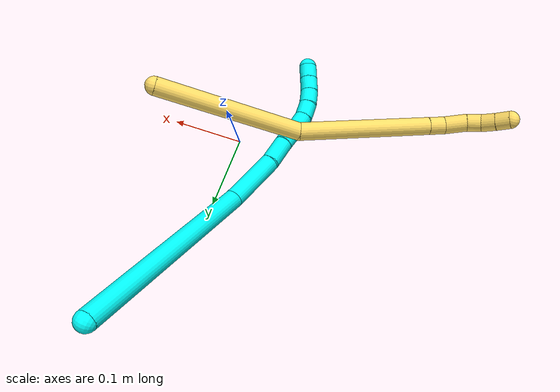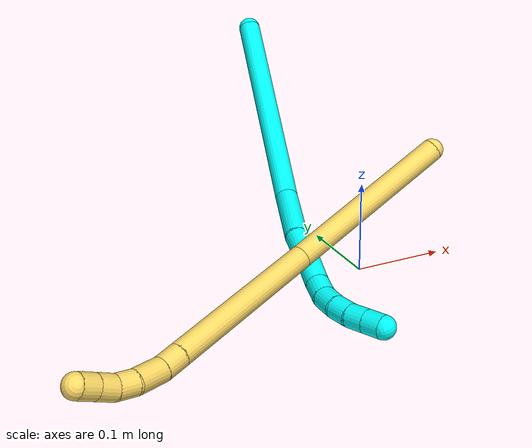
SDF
<sdf version="1.7">
 <world name="default">
  <model name="3">
   <static>0</static>
   <link name="3">
    <collision name="collision-cylinder-e_1_1_4">
     <pose>-0.072334 -0.095496 -0.032103 1.8951 -0.622682 -0.841857</pose>
     <geometry><cylinder><radius>0.0125</radius><length>0.248051</length></cylinder></geometry>
     <surface>
      <friction><ode><mu>1.16</mu><mu2>1.16</mu2><slip1>0</slip1><slip2>0</slip2></ode></friction>
      <contact><ode><kp>1e+06</kp><kd>1</kd><max_vel>0</max_vel><min_depth>0.001</min_depth></ode></contact>
     </surface>
    </collision>
    <visual name="visual-cylinder-e_1_1_4">
     <pose>-0.072334 -0.095496 -0.032103 1.8951 -0.622682 -0.841857</pose>
     <geometry><cylinder><radius>0.0125</radius><length>0.248051</length></cylinder></geometry>
     <material><ambient>0.003922 1 0.996078 1</ambient></material>
    </visual>
    <collision name="collision-cylinder-e_2_4_5">
     <pose>-0.175981 -0.207664 -0.073861 2.0957 -1.01925 -1.53977</pose>
     <geometry><cylinder><radius>0.0125</radius><length>0.07353</length></cylinder></geometry>
     <surface>
      <friction><ode><mu>1.16</mu><mu2>1.16</mu2><slip1>0</slip1><slip2>0</slip2></ode></friction>
      <contact><ode><kp>1e+06</kp><kd>1</kd><max_vel>0</max_vel><min_depth>0.001</min_depth></ode></contact>
     </surface>
    </collision>
    <visual name="visual-cylinder-e_2_4_5">
     <pose>-0.175981 -0.207664 -0.073861 2.0957 -1.01925 -1.53977</pose>
     <geometry><cylinder><radius>0.0125</radius><length>0.07353</length></cylinder></geometry>
     <material><ambient>0.003922 1 0.996078 1</ambient></material>
    </visual>
    <collision name="collision-cylinder-e_3_5_6">
     <pose>-0.222618 -0.234475 -0.085532 1.76721 -0.977276 -1.14972</pose>
     <geometry><cylinder><radius>0.0125</radius><length>0.036971</length></cylinder></geometry>
     <surface>
      <friction><ode><mu>1.16</mu><mu2>1.16</mu2><slip1>0</slip1><slip2>0</slip2></ode></friction>
      <contact><ode><kp>1e+06</kp><kd>1</kd><max_vel>0</max_vel><min_depth>0.001</min_depth></ode></contact>
     </surface>
    </collision>
    <visual name="visual-cylinder-e_3_5_6">
     <pose>-0.222618 -0.234475 -0.085532 1.76721 -0.977276 -1.14972</pose>
     <geometry><cylinder><radius>0.0125</radius><length>0.036971</length></cylinder></geometry>
     <material><ambient>0.003922 1 0.996078 1</ambient></material>
    </visual>
    <collision name="collision-cylinder-e_4_6_7">
     <pose>-0.251656 -0.2553 -0.090341 1.82633 -0.892835 -1.10963</pose>
     <geometry><cylinder><radius>0.0125</radius><length>0.035215</length></cylinder></geometry>
     <surface>
      <friction><ode><mu>1.16</mu><mu2>1.16</mu2><slip1>0</slip1><slip2>0</slip2></ode></friction>
      <contact><ode><kp>1e+06</kp><kd>1</kd><max_vel>0</max_vel><min_depth>0.001</min_depth></ode></contact>
     </surface>
    </collision>
    <visual name="visual-cylinder-e_4_6_7">
     <pose>-0.251656 -0.2553 -0.090341 1.82633 -0.892835 -1.10963</pose>
     <geometry><cylinder><radius>0.0125</radius><length>0.035215</length></cylinder></geometry>
     <material><ambient>0.003922 1 0.996078 1</ambient></material>
    </visual>
    <collision name="collision-cylinder-e_5_7_8">
     <pose>-0.275244 -0.271332 -0.094433 1.80929 -1.06237 -1.28375</pose>
     <geometry><cylinder><radius>0.0125</radius><length>0.022609</length></cylinder></geometry>
     <surface>
      <friction><ode><mu>1.16</mu><mu2>1.16</mu2><slip1>0</slip1><slip2>0</slip2></ode></friction>
      <contact><ode><kp>1e+06</kp><kd>1</kd><max_vel>0</max_vel><min_depth>0.001</min_depth></ode></contact>
     </surface>
    </collision>
    <visual name="visual-cylinder-e_5_7_8">
     <pose>-0.275244 -0.271332 -0.094433 1.80929 -1.06237 -1.28375</pose>
     <geometry><cylinder><radius>0.0125</radius><length>0.022609</length></cylinder></geometry>
     <material><ambient>0.003922 1 0.996078 1</ambient></material>
    </visual>
    <collision name="collision-cylinder-e_6_8_9">
     <pose>-0.295317 -0.280917 -0.094266 1.23753 -1.15656 -0.870124</pose>
     <geometry><cylinder><radius>0.0125</radius><length>0.022282</length></cylinder></geometry>
     <surface>
      <friction><ode><mu>1.16</mu><mu2>1.16</mu2><slip1>0</slip1><slip2>0</slip2></ode></friction>
      <contact><ode><kp>1e+06</kp><kd>1</kd><max_vel>0</max_vel><min_depth>0.001</min_depth></ode></contact>
     </surface>
    </collision>
    <visual name="visual-cylinder-e_6_8_9">
     <pose>-0.295317 -0.280917 -0.094266 1.23753 -1.15656 -0.870124</pose>
     <geometry><cylinder><radius>0.0125</radius><length>0.022282</length></cylinder></geometry>
     <material><ambient>0.003922 1 0.996078 1</ambient></material>
    </visual>
    <collision name="collision-cylinder-e_7_9_10">
     <pose>-0.314443 -0.28956 -0.089479 0.924923 -1.01735 -0.542275</pose>
     <geometry><cylinder><radius>0.0125</radius><length>0.020989</length></cylinder></geometry>
     <surface>
      <friction><ode><mu>1.16</mu><mu2>1.16</mu2><slip1>0</slip1><slip2>0</slip2></ode></friction>
      <contact><ode><kp>1e+06</kp><kd>1</kd><max_vel>0</max_vel><min_depth>0.001</min_depth></ode></contact>
     </surface>
    </collision>
    <visual name="visual-cylinder-e_7_9_10">
     <pose>-0.314443 -0.28956 -0.089479 0.924923 -1.01735 -0.542275</pose>
     <geometry><cylinder><radius>0.0125</radius><length>0.020989</length></cylinder></geometry>
     <material><ambient>0.003922 1 0.996078 1</ambient></material>
    </visual>
    <collision name="collision-cylinder-e_8_10_11">
     <pose>-0.331567 -0.29759 -0.081401 0.651132 -0.940311 -0.339781</pose>
     <geometry><cylinder><radius>0.0125</radius><length>0.020293</length></cylinder></geometry>
     <surface>
      <friction><ode><mu>1.16</mu><mu2>1.16</mu2><slip1>0</slip1><slip2>0</slip2></ode></friction>
      <contact><ode><kp>1e+06</kp><kd>1</kd><max_vel>0</max_vel><min_depth>0.001</min_depth></ode></contact>
     </surface>
    </collision>
    <visual name="visual-cylinder-e_8_10_11">
     <pose>-0.331567 -0.29759 -0.081401 0.651132 -0.940311 -0.339781</pose>
     <geometry><cylinder><radius>0.0125</radius><length>0.020293</length></cylinder></geometry>
     <material><ambient>0.003922 1 0.996078 1</ambient></material>
    </visual>
    <collision name="collision-cylinder-e_9_11_2">
     <pose>-0.347874 -0.304821 -0.071971 0.657287 -0.941815 -0.343795</pose>
     <geometry><cylinder><radius>0.0125</radius><length>0.020061</length></cylinder></geometry>
     <surface>
      <friction><ode><mu>1.16</mu><mu2>1.16</mu2><slip1>0</slip1><slip2>0</slip2></ode></friction>
      <contact><ode><kp>1e+06</kp><kd>1</kd><max_vel>0</max_vel><min_depth>0.001</min_depth></ode></contact>
     </surface>
    </collision>
    <visual name="visual-cylinder-e_9_11_2">
     <pose>-0.347874 -0.304821 -0.071971 0.657287 -0.941815 -0.343795</pose>
     <geometry><cylinder><radius>0.0125</radius><length>0.020061</length></cylinder></geometry>
     <material><ambient>0.003922 1 0.996078 1</ambient></material>
    </visual>
    <collision name="collision-sphere-2">
     <pose>-0.355984 -0.308426 -0.0673 0 -0 0</pose>
     <geometry><sphere><radius>0.0125</radius></sphere></geometry>
     <surface>
      <friction><ode><mu>1.16</mu><mu2>1.16</mu2><slip1>0</slip1><slip2>0</slip2></ode></friction>
      <contact><ode><kp>1e+06</kp><kd>1</kd><max_vel>0</max_vel><min_depth>0.001</min_depth></ode></contact>
     </surface>
    </collision>
    <visual name="visual-sphere-2">
     <pose>-0.355984 -0.308426 -0.0673 0 -0 0</pose>
     <geometry><sphere><radius>0.0125</radius></sphere></geometry>
     <material><ambient>0.003922 1 0.996078 1</ambient></material>
    </visual>
    <collision name="collision-sphere-11">
     <pose>-0.339763 -0.301215 -0.076643 0 -0 0</pose>
     <geometry><sphere><radius>0.0125</radius></sphere></geometry>
     <surface>
      <friction><ode><mu>1.16</mu><mu2>1.16</mu2><slip1>0</slip1><slip2>0</slip2></ode></friction>
      <contact><ode><kp>1e+06</kp><kd>1</kd><max_vel>0</max_vel><min_depth>0.001</min_depth></ode></contact>
     </surface>
    </collision>
    <visual name="visual-sphere-11">
     <pose>-0.339763 -0.301215 -0.076643 0 -0 0</pose>
     <geometry><sphere><radius>0.0125</radius></sphere></geometry>
     <material><ambient>0.003922 1 0.996078 1</ambient></material>
    </visual>
    <collision name="collision-sphere-10">
     <pose>-0.323371 -0.293965 -0.086159 0 -0 0</pose>
     <geometry><sphere><radius>0.0125</radius></sphere></geometry>
     <surface>
      <friction><ode><mu>1.16</mu><mu2>1.16</mu2><slip1>0</slip1><slip2>0</slip2></ode></friction>
      <contact><ode><kp>1e+06</kp><kd>1</kd><max_vel>0</max_vel><min_depth>0.001</min_depth></ode></contact>
     </surface>
    </collision>
    <visual name="visual-sphere-10">
     <pose>-0.323371 -0.293965 -0.086159 0 -0 0</pose>
     <geometry><sphere><radius>0.0125</radius></sphere></geometry>
     <material><ambient>0.003922 1 0.996078 1</ambient></material>
    </visual>
    <collision name="collision-sphere-9">
     <pose>-0.305515 -0.285154 -0.092799 0 -0 0</pose>
     <geometry><sphere><radius>0.0125</radius></sphere></geometry>
     <surface>
      <friction><ode><mu>1.16</mu><mu2>1.16</mu2><slip1>0</slip1><slip2>0</slip2></ode></friction>
      <contact><ode><kp>1e+06</kp><kd>1</kd><max_vel>0</max_vel><min_depth>0.001</min_depth></ode></contact>
     </surface>
    </collision>
    <visual name="visual-sphere-9">
     <pose>-0.305515 -0.285154 -0.092799 0 -0 0</pose>
     <geometry><sphere><radius>0.0125</radius></sphere></geometry>
     <material><ambient>0.003922 1 0.996078 1</ambient></material>
    </visual>
    <collision name="collision-sphere-4">
     <pose>-0.144667 -0.190993 -0.064206 0 -0 0</pose>
     <geometry><sphere><radius>0.0125</radius></sphere></geometry>
     <surface>
      <friction><ode><mu>1.16</mu><mu2>1.16</mu2><slip1>0</slip1><slip2>0</slip2></ode></friction>
      <contact><ode><kp>1e+06</kp><kd>1</kd><max_vel>0</max_vel><min_depth>0.001</min_depth></ode></contact>
     </surface>
    </collision>
    <visual name="visual-sphere-4">
     <pose>-0.144667 -0.190993 -0.064206 0 -0 0</pose>
     <geometry><sphere><radius>0.0125</radius></sphere></geometry>
     <material><ambient>0.003922 1 0.996078 1</ambient></material>
    </visual>
    <collision name="collision-sphere-1">
     <geometry><sphere><radius>0.0125</radius></sphere></geometry>
     <surface>
      <friction><ode><mu>1.16</mu><mu2>1.16</mu2><slip1>0</slip1><slip2>0</slip2></ode></friction>
      <contact><ode><kp>1e+06</kp><kd>1</kd><max_vel>0</max_vel><min_depth>0.001</min_depth></ode></contact>
     </surface>
    </collision>
    <visual name="visual-sphere-1">
     <geometry><sphere><radius>0.0125</radius></sphere></geometry>
     <material><ambient>0.003922 1 0.996078 1</ambient></material>
    </visual>
    <collision name="collision-sphere-8">
     <pose>-0.285118 -0.27668 -0.095733 0 -0 0</pose>
     <geometry><sphere><radius>0.0125</radius></sphere></geometry>
     <surface>
      <friction><ode><mu>1.16</mu><mu2>1.16</mu2><slip1>0</slip1><slip2>0</slip2></ode></friction>
      <contact><ode><kp>1e+06</kp><kd>1</kd><max_vel>0</max_vel><min_depth>0.001</min_depth></ode></contact>
     </surface>
    </collision>
    <visual name="visual-sphere-8">
     <pose>-0.285118 -0.27668 -0.095733 0 -0 0</pose>
     <geometry><sphere><radius>0.0125</radius></sphere></geometry>
     <material><ambient>0.003922 1 0.996078 1</ambient></material>
    </visual>
    <collision name="collision-sphere-5">
     <pose>-0.207294 -0.224335 -0.083515 0 -0 0</pose>
     <geometry><sphere><radius>0.0125</radius></sphere></geometry>
     <surface>
      <friction><ode><mu>1.16</mu><mu2>1.16</mu2><slip1>0</slip1><slip2>0</slip2></ode></friction>
      <contact><ode><kp>1e+06</kp><kd>1</kd><max_vel>0</max_vel><min_depth>0.001</min_depth></ode></contact>
     </surface>
    </collision>
    <visual name="visual-sphere-5">
     <pose>-0.207294 -0.224335 -0.083515 0 -0 0</pose>
     <geometry><sphere><radius>0.0125</radius></sphere></geometry>
     <material><ambient>0.003922 1 0.996078 1</ambient></material>
    </visual>
    <collision name="collision-sphere-6">
     <pose>-0.237942 -0.244615 -0.08755 0 -0 0</pose>
     <geometry><sphere><radius>0.0125</radius></sphere></geometry>
     <surface>
      <friction><ode><mu>1.16</mu><mu2>1.16</mu2><slip1>0</slip1><slip2>0</slip2></ode></friction>
      <contact><ode><kp>1e+06</kp><kd>1</kd><max_vel>0</max_vel><min_depth>0.001</min_depth></ode></contact>
     </surface>
    </collision>
    <visual name="visual-sphere-6">
     <pose>-0.237942 -0.244615 -0.08755 0 -0 0</pose>
     <geometry><sphere><radius>0.0125</radius></sphere></geometry>
     <material><ambient>0.003922 1 0.996078 1</ambient></material>
    </visual>
    <collision name="collision-sphere-7">
     <pose>-0.265369 -0.265985 -0.093133 0 -0 0</pose>
     <geometry><sphere><radius>0.0125</radius></sphere></geometry>
     <surface>
      <friction><ode><mu>1.16</mu><mu2>1.16</mu2><slip1>0</slip1><slip2>0</slip2></ode></friction>
      <contact><ode><kp>1e+06</kp><kd>1</kd><max_vel>0</max_vel><min_depth>0.001</min_depth></ode></contact>
     </surface>
    </collision>
    <visual name="visual-sphere-7">
     <pose>-0.265369 -0.265985 -0.093133 0 -0 0</pose>
     <geometry><sphere><radius>0.0125</radius></sphere></geometry>
     <material><ambient>0.003922 1 0.996078 1</ambient></material>
    </visual>
    <inertial>
     <pose>-0.162169 -0.174484 -0.057894 0 -0 0</pose>
     <mass>0.5</mass>
     <inertia>
      <ixx>-0.000132</ixx>
      <ixy>0</ixy>
      <ixz>0</ixz>
      <iyy>-0.000532</iyy>
      <iyz>0</iyz>
      <izz>0.001801</izz>
     </inertia>
    </inertial>
   </link>
   <pose>0.003988 0.2902 0.206008 1.28815 0.306606 1.38576</pose>
  </model>
  <model name="5">
   <static>0</static>
   <link name="5">
    <collision name="collision-cylinder-e_1_1_4">
     <pose>-0.091173 -0.032881 0.013153 1.19029 -1.2003 -0.867775</pose>
     <geometry><cylinder><radius>0.0125</radius><length>0.195619</length></cylinder></geometry>
     <surface>
      <friction><ode><mu>1.16</mu><mu2>1.16</mu2><slip1>0</slip1><slip2>0</slip2></ode></friction>
      <contact><ode><kp>1e+06</kp><kd>1</kd><max_vel>0</max_vel><min_depth>0.001</min_depth></ode></contact>
     </surface>
    </collision>
    <visual name="visual-cylinder-e_1_1_4">
     <pose>-0.091173 -0.032881 0.013153 1.19029 -1.2003 -0.867775</pose>
     <geometry><cylinder><radius>0.0125</radius><length>0.195619</length></cylinder></geometry>
     <material><ambient>1 0.858824 0.4 1</ambient></material>
    </visual>
    <collision name="collision-cylinder-e_2_4_5">
     <pose>-0.266882 -0.098951 0.005274 2.13561 -1.13572 -1.71826</pose>
     <geometry><cylinder><radius>0.0125</radius><length>0.186441</length></cylinder></geometry>
     <surface>
      <friction><ode><mu>1.16</mu><mu2>1.16</mu2><slip1>0</slip1><slip2>0</slip2></ode></friction>
      <contact><ode><kp>1e+06</kp><kd>1</kd><max_vel>0</max_vel><min_depth>0.001</min_depth></ode></contact>
     </surface>
    </collision>
    <visual name="visual-cylinder-e_2_4_5">
     <pose>-0.266882 -0.098951 0.005274 2.13561 -1.13572 -1.71826</pose>
     <geometry><cylinder><radius>0.0125</radius><length>0.186441</length></cylinder></geometry>
     <material><ambient>1 0.858824 0.4 1</ambient></material>
    </visual>
    <collision name="collision-cylinder-e_3_5_6">
     <pose>-0.36212 -0.136366 -0.018372 2.12488 -1.13594 -1.70596</pose>
     <geometry><cylinder><radius>0.0125</radius><length>0.0236</length></cylinder></geometry>
     <surface>
      <friction><ode><mu>1.16</mu><mu2>1.16</mu2><slip1>0</slip1><slip2>0</slip2></ode></friction>
      <contact><ode><kp>1e+06</kp><kd>1</kd><max_vel>0</max_vel><min_depth>0.001</min_depth></ode></contact>
     </surface>
    </collision>
    <visual name="visual-cylinder-e_3_5_6">
     <pose>-0.36212 -0.136366 -0.018372 2.12488 -1.13594 -1.70596</pose>
     <geometry><cylinder><radius>0.0125</radius><length>0.0236</length></cylinder></geometry>
     <material><ambient>1 0.858824 0.4 1</ambient></material>
    </visual>
    <collision name="collision-cylinder-e_4_6_7">
     <pose>-0.385631 -0.148806 -0.026688 2.17753 -0.908086 -1.50132</pose>
     <geometry><cylinder><radius>0.0125</radius><length>0.032498</length></cylinder></geometry>
     <surface>
      <friction><ode><mu>1.16</mu><mu2>1.16</mu2><slip1>0</slip1><slip2>0</slip2></ode></friction>
      <contact><ode><kp>1e+06</kp><kd>1</kd><max_vel>0</max_vel><min_depth>0.001</min_depth></ode></contact>
     </surface>
    </collision>
    <visual name="visual-cylinder-e_4_6_7">
     <pose>-0.385631 -0.148806 -0.026688 2.17753 -0.908086 -1.50132</pose>
     <geometry><cylinder><radius>0.0125</radius><length>0.032498</length></cylinder></geometry>
     <material><ambient>1 0.858824 0.4 1</ambient></material>
    </visual>
    <collision name="collision-cylinder-e_5_7_8">
     <pose>-0.405867 -0.164015 -0.034939 1.92038 -0.784076 -1.06723</pose>
     <geometry><cylinder><radius>0.0125</radius><length>0.021033</length></cylinder></geometry>
     <surface>
      <friction><ode><mu>1.16</mu><mu2>1.16</mu2><slip1>0</slip1><slip2>0</slip2></ode></friction>
      <contact><ode><kp>1e+06</kp><kd>1</kd><max_vel>0</max_vel><min_depth>0.001</min_depth></ode></contact>
     </surface>
    </collision>
    <visual name="visual-cylinder-e_5_7_8">
     <pose>-0.405867 -0.164015 -0.034939 1.92038 -0.784076 -1.06723</pose>
     <geometry><cylinder><radius>0.0125</radius><length>0.021033</length></cylinder></geometry>
     <material><ambient>1 0.858824 0.4 1</ambient></material>
    </visual>
    <collision name="collision-cylinder-e_6_8_9">
     <pose>-0.418401 -0.179061 -0.041561 2.03908 -0.515185 -0.809635</pose>
     <geometry><cylinder><radius>0.0125</radius><length>0.020734</length></cylinder></geometry>
     <surface>
      <friction><ode><mu>1.16</mu><mu2>1.16</mu2><slip1>0</slip1><slip2>0</slip2></ode></friction>
      <contact><ode><kp>1e+06</kp><kd>1</kd><max_vel>0</max_vel><min_depth>0.001</min_depth></ode></contact>
     </surface>
    </collision>
    <visual name="visual-cylinder-e_6_8_9">
     <pose>-0.418401 -0.179061 -0.041561 2.03908 -0.515185 -0.809635</pose>
     <geometry><cylinder><radius>0.0125</radius><length>0.020734</length></cylinder></geometry>
     <material><ambient>1 0.858824 0.4 1</ambient></material>
    </visual>
    <collision name="collision-cylinder-e_7_9_2">
     <pose>-0.428444 -0.194679 -0.050005 2.0947 -0.513963 -0.854553</pose>
     <geometry><cylinder><radius>0.0125</radius><length>0.020076</length></cylinder></geometry>
     <surface>
      <friction><ode><mu>1.16</mu><mu2>1.16</mu2><slip1>0</slip1><slip2>0</slip2></ode></friction>
      <contact><ode><kp>1e+06</kp><kd>1</kd><max_vel>0</max_vel><min_depth>0.001</min_depth></ode></contact>
     </surface>
    </collision>
    <visual name="visual-cylinder-e_7_9_2">
     <pose>-0.428444 -0.194679 -0.050005 2.0947 -0.513963 -0.854553</pose>
     <geometry><cylinder><radius>0.0125</radius><length>0.020076</length></cylinder></geometry>
     <material><ambient>1 0.858824 0.4 1</ambient></material>
    </visual>
    <collision name="collision-sphere-2">
     <pose>-0.433378 -0.202248 -0.054378 0 -0 0</pose>
     <geometry><sphere><radius>0.0125</radius></sphere></geometry>
     <surface>
      <friction><ode><mu>1.16</mu><mu2>1.16</mu2><slip1>0</slip1><slip2>0</slip2></ode></friction>
      <contact><ode><kp>1e+06</kp><kd>1</kd><max_vel>0</max_vel><min_depth>0.001</min_depth></ode></contact>
     </surface>
    </collision>
    <visual name="visual-sphere-2">
     <pose>-0.433378 -0.202248 -0.054378 0 -0 0</pose>
     <geometry><sphere><radius>0.0125</radius></sphere></geometry>
     <material><ambient>1 0.858824 0.4 1</ambient></material>
    </visual>
    <collision name="collision-sphere-9">
     <pose>-0.423509 -0.187111 -0.045633 0 -0 0</pose>
     <geometry><sphere><radius>0.0125</radius></sphere></geometry>
     <surface>
      <friction><ode><mu>1.16</mu><mu2>1.16</mu2><slip1>0</slip1><slip2>0</slip2></ode></friction>
      <contact><ode><kp>1e+06</kp><kd>1</kd><max_vel>0</max_vel><min_depth>0.001</min_depth></ode></contact>
     </surface>
    </collision>
    <visual name="visual-sphere-9">
     <pose>-0.423509 -0.187111 -0.045633 0 -0 0</pose>
     <geometry><sphere><radius>0.0125</radius></sphere></geometry>
     <material><ambient>1 0.858824 0.4 1</ambient></material>
    </visual>
    <collision name="collision-sphere-4">
     <pose>-0.182346 -0.065763 0.026305 0 -0 0</pose>
     <geometry><sphere><radius>0.0125</radius></sphere></geometry>
     <surface>
      <friction><ode><mu>1.16</mu><mu2>1.16</mu2><slip1>0</slip1><slip2>0</slip2></ode></friction>
      <contact><ode><kp>1e+06</kp><kd>1</kd><max_vel>0</max_vel><min_depth>0.001</min_depth></ode></contact>
     </surface>
    </collision>
    <visual name="visual-sphere-4">
     <pose>-0.182346 -0.065763 0.026305 0 -0 0</pose>
     <geometry><sphere><radius>0.0125</radius></sphere></geometry>
     <material><ambient>1 0.858824 0.4 1</ambient></material>
    </visual>
    <collision name="collision-sphere-1">
     <geometry><sphere><radius>0.0125</radius></sphere></geometry>
     <surface>
      <friction><ode><mu>1.16</mu><mu2>1.16</mu2><slip1>0</slip1><slip2>0</slip2></ode></friction>
      <contact><ode><kp>1e+06</kp><kd>1</kd><max_vel>0</max_vel><min_depth>0.001</min_depth></ode></contact>
     </surface>
    </collision>
    <visual name="visual-sphere-1">
     <geometry><sphere><radius>0.0125</radius></sphere></geometry>
     <material><ambient>1 0.858824 0.4 1</ambient></material>
    </visual>
    <collision name="collision-sphere-8">
     <pose>-0.413293 -0.171011 -0.037489 0 -0 0</pose>
     <geometry><sphere><radius>0.0125</radius></sphere></geometry>
     <surface>
      <friction><ode><mu>1.16</mu><mu2>1.16</mu2><slip1>0</slip1><slip2>0</slip2></ode></friction>
      <contact><ode><kp>1e+06</kp><kd>1</kd><max_vel>0</max_vel><min_depth>0.001</min_depth></ode></contact>
     </surface>
    </collision>
    <visual name="visual-sphere-8">
     <pose>-0.413293 -0.171011 -0.037489 0 -0 0</pose>
     <geometry><sphere><radius>0.0125</radius></sphere></geometry>
     <material><ambient>1 0.858824 0.4 1</ambient></material>
    </visual>
    <collision name="collision-sphere-5">
     <pose>-0.351418 -0.132139 -0.015756 0 -0 0</pose>
     <geometry><sphere><radius>0.0125</radius></sphere></geometry>
     <surface>
      <friction><ode><mu>1.16</mu><mu2>1.16</mu2><slip1>0</slip1><slip2>0</slip2></ode></friction>
      <contact><ode><kp>1e+06</kp><kd>1</kd><max_vel>0</max_vel><min_depth>0.001</min_depth></ode></contact>
     </surface>
    </collision>
    <visual name="visual-sphere-5">
     <pose>-0.351418 -0.132139 -0.015756 0 -0 0</pose>
     <geometry><sphere><radius>0.0125</radius></sphere></geometry>
     <material><ambient>1 0.858824 0.4 1</ambient></material>
    </visual>
    <collision name="collision-sphere-6">
     <pose>-0.372821 -0.140593 -0.020988 0 -0 0</pose>
     <geometry><sphere><radius>0.0125</radius></sphere></geometry>
     <surface>
      <friction><ode><mu>1.16</mu><mu2>1.16</mu2><slip1>0</slip1><slip2>0</slip2></ode></friction>
      <contact><ode><kp>1e+06</kp><kd>1</kd><max_vel>0</max_vel><min_depth>0.001</min_depth></ode></contact>
     </surface>
    </collision>
    <visual name="visual-sphere-6">
     <pose>-0.372821 -0.140593 -0.020988 0 -0 0</pose>
     <geometry><sphere><radius>0.0125</radius></sphere></geometry>
     <material><ambient>1 0.858824 0.4 1</ambient></material>
    </visual>
    <collision name="collision-sphere-7">
     <pose>-0.39844 -0.157019 -0.032388 0 -0 0</pose>
     <geometry><sphere><radius>0.0125</radius></sphere></geometry>
     <surface>
      <friction><ode><mu>1.16</mu><mu2>1.16</mu2><slip1>0</slip1><slip2>0</slip2></ode></friction>
      <contact><ode><kp>1e+06</kp><kd>1</kd><max_vel>0</max_vel><min_depth>0.001</min_depth></ode></contact>
     </surface>
    </collision>
    <visual name="visual-sphere-7">
     <pose>-0.39844 -0.157019 -0.032388 0 -0 0</pose>
     <geometry><sphere><radius>0.0125</radius></sphere></geometry>
     <material><ambient>1 0.858824 0.4 1</ambient></material>
    </visual>
    <inertial>
     <pose>-0.228968 -0.088011 -0.00069 0 -0 0</pose>
     <mass>0.5</mass>
     <inertia>
      <ixx>-0.000326</ixx>
      <ixy>0</ixy>
      <ixz>0</ixz>
      <iyy>0.000606</iyy>
      <iyz>0</iyz>
      <izz>0.001502</izz>
     </inertia>
    </inertial>
   </link>
   <pose>0.091165 0.006065 0.12274 -2.38148 -0.580996 0.550952</pose>
  </model>
 </world>
</sdf>
